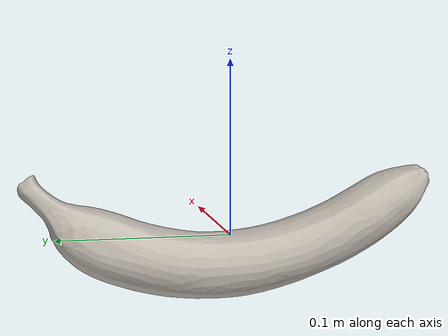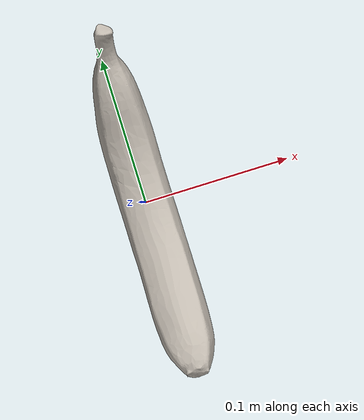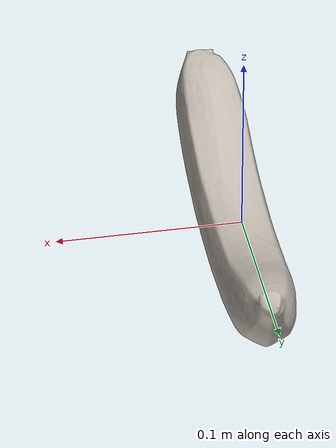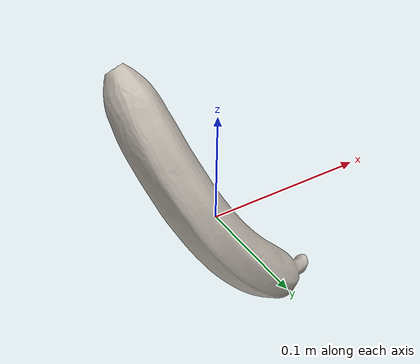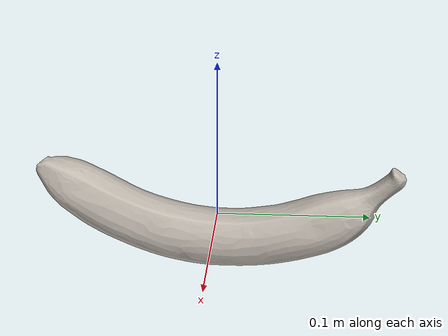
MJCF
<mujoco model="banana_fb1b6fc4">
  <compiler angle="radian"/>
  <asset>
    <texture type="2d" name="banana_fb1b6fc4_tex" file="banana_fb1b6fc4_visual_0.png"/>
    <material name="banana_fb1b6fc4_mat" texture="banana_fb1b6fc4_tex"/>
    <mesh name="banana_fb1b6fc4_visual" content_type="model/obj" file="banana_fb1b6fc4_visual.obj" scale="-1.11851 1.19209 1"/>
    <mesh name="banana_fb1b6fc4_c0" content_type="model/obj" file="banana_fb1b6fc4_c0.obj" scale="-1.11851 1.19209 1"/>
    <mesh name="banana_fb1b6fc4_c1" content_type="model/obj" file="banana_fb1b6fc4_c1.obj" scale="-1.11851 1.19209 1"/>
    <mesh name="banana_fb1b6fc4_c2" content_type="model/obj" file="banana_fb1b6fc4_c2.obj" scale="-1.11851 1.19209 1"/>
  </asset>
  <worldbody>
    <body name="banana_fb1b6fc4">
      <freejoint/>
      <geom name="banana_fb1b6fc4_visual" type="mesh" mesh="banana_fb1b6fc4_visual" mass="1e-8" contype="0" conaffinity="0" group="2" material="banana_fb1b6fc4_mat"/>
      <geom name="banana_fb1b6fc4_c0" type="mesh" mesh="banana_fb1b6fc4_c0" group="3" density="445.63" friction="0.9 0.05 0.005" condim="4" rgba="0.4 0.5 0.9 0.35"/>
      <geom name="banana_fb1b6fc4_c1" type="mesh" mesh="banana_fb1b6fc4_c1" group="3" density="445.63" friction="0.9 0.05 0.005" condim="4" rgba="0.4 0.5 0.9 0.35"/>
      <geom name="banana_fb1b6fc4_c2" type="mesh" mesh="banana_fb1b6fc4_c2" group="3" density="445.63" friction="0.9 0.05 0.005" condim="4" rgba="0.4 0.5 0.9 0.35"/>
    </body>
  </worldbody>
</mujoco>
